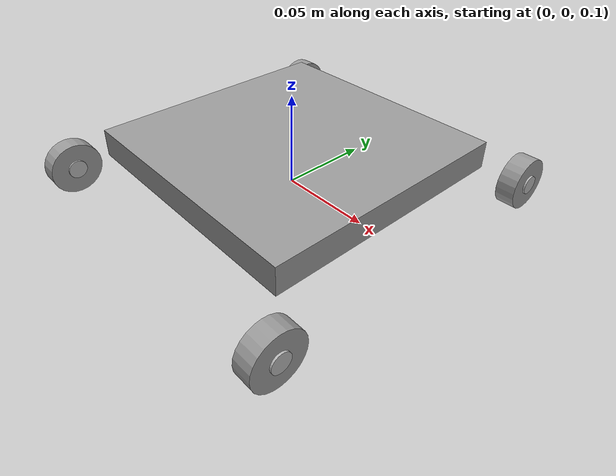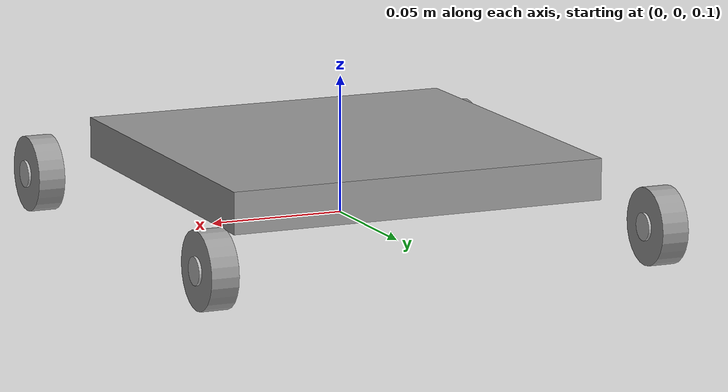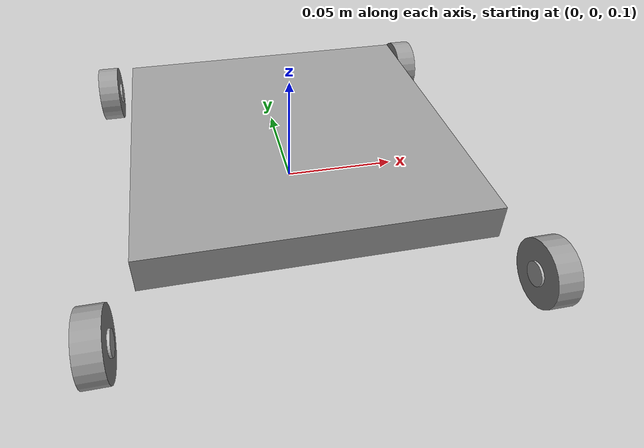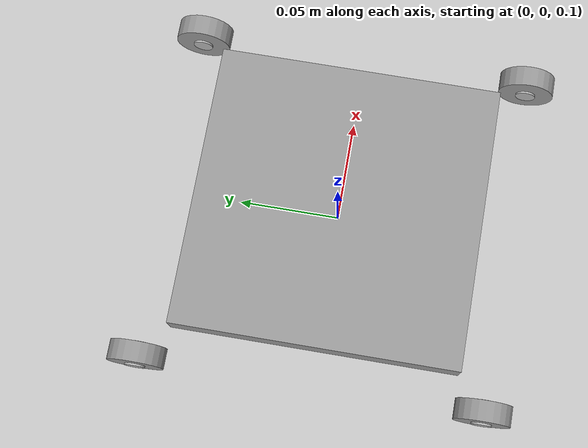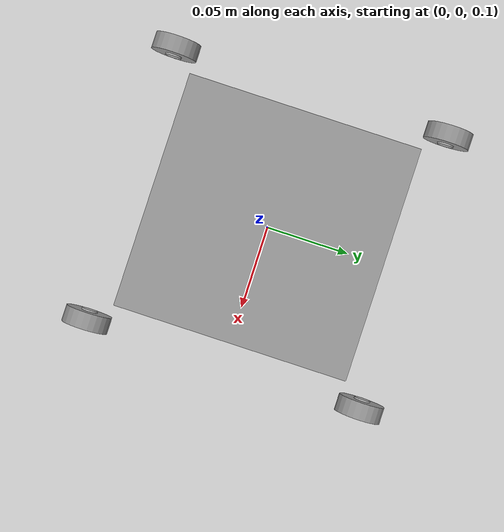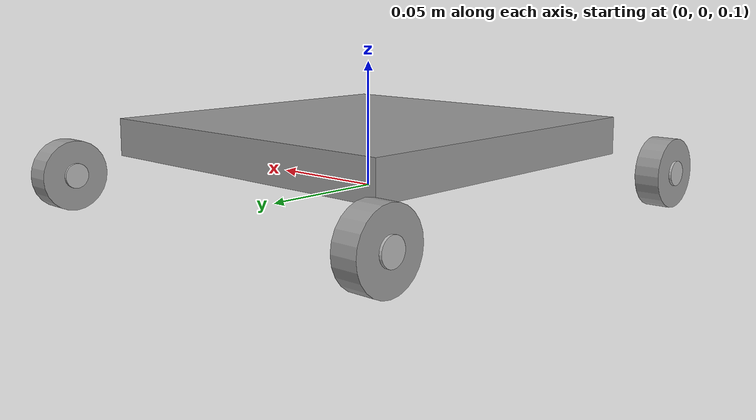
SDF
<?xml version="1.0" ?>
<!-- |    This document was autogenerated by xacro from /home/robostep/nav2-sample/src/OpenBase/openbase_gazebo_models/models/indep_steer/model.sdf.xacro | -->
<!-- |    EDITING THIS FILE BY HAND IS NOT RECOMMENDED                                 | -->
<sdf version="1.6">
  <model name="indep_steer_model">
    <pose>0 0 0.1 0 0 0</pose>
    <link name="body_link">
      <pose>0 0 0.02 0 0 0</pose>
      <inertial>
        <mass>0.07862944645</mass>
        <pose>0 0 0 0 0 0</pose>
        <inertia>
          <ixx>0.00018035985530754</ixx>
          <ixy>0</ixy>
          <ixz>0</ixz>
          <iyy>0.00018035985530754</iyy>
          <iyz>0</iyz>
          <izz>0.00018945961663220</izz>
        </inertia>
      </inertial>
      <visual name="visual">
        <pose>0 0 0 0 0 0</pose>
        <geometry>
          <box>
            <size>0.14 0.14 0.015</size>
          </box>
        </geometry>
        <material>
          <lighting>true</lighting>
          <script>
            <uri>file://media/materials/scripts/gazebo.material</uri>
            <name>Gazebo/Grey</name>
          </script>
          <ambient>1 1 1 1</ambient>
          <diffuse>0.7 0.7 0.7 1</diffuse>
          <specular>0.01 0.01 0.01 1</specular>
          <emissive>0 0 0 1</emissive>
          <shader type="vertex">
            <normal_map>__default__</normal_map>
          </shader>
        </material>
      </visual>
      <collision name="collision">
        <laser_retro>0</laser_retro>
        <max_contacts>10</max_contacts>
        <pose>0 0 0 0 0 0</pose>
        <geometry>
          <box>
            <size>0.14 0.14 0.015</size>
          </box>
        </geometry>
        <surface>
          <friction>
            <ode>
              <mu>1</mu>
              <mu2>1</mu2>
              <fdir1>0 0 0</fdir1>
              <slip1>0</slip1>
              <slip2>0</slip2>
            </ode>
            <torsional>
              <coefficient>1</coefficient>
              <patch_radius>0</patch_radius>
              <surface_radius>0</surface_radius>
              <use_patch_radius>true</use_patch_radius>
              <ode>
                <slip>0</slip>
              </ode>
            </torsional>
          </friction>
          <bounce>
            <restitution_coefficient>0</restitution_coefficient>
            <threshold>1e+06</threshold>
          </bounce>
          <contact>
            <collide_without_contact>false</collide_without_contact>
            <collide_bitmask>1</collide_bitmask>
            <ode>
              <soft_cfm>0</soft_cfm>
              <soft_erp>0.2</soft_erp>
              <kp>1e+13</kp>
              <kd>1</kd>
              <max_vel>0.01</max_vel>
              <min_depth>0</min_depth>
            </ode>
            <bullet>
              <split_impulse>true</split_impulse>
              <split_impulse_penetration_threshold>-0.01</split_impulse_penetration_threshold>
              <soft_cfm>0</soft_cfm>
              <soft_erp>0.2</soft_erp>
              <kp>1e+13</kp>
              <kd>1</kd>
            </bullet>
          </contact>
        </surface>
      </collision>
    </link>
    <include>
      <name>unicycle_wheel_front_left_model</name>
      <uri>model://unicycle_wheel</uri>
      <pose>0.08485281374238571 0.0848528137423857 0 0 0 0</pose>
    </include>
    <include>
      <name>unicycle_wheel_back_left_model</name>
      <uri>model://unicycle_wheel</uri>
      <pose>-0.0848528137423857 0.08485281374238571 0 0 0 0</pose>
    </include>
    <include>
      <name>unicycle_wheel_back_right_model</name>
      <uri>model://unicycle_wheel</uri>
      <pose>-0.08485281374238572 -0.0848528137423857 0 0 0 0</pose>
    </include>
    <include>
      <name>unicycle_wheel_front_right_model</name>
      <uri>model://unicycle_wheel</uri>
      <pose>0.08485281374238568 -0.08485281374238572 0 0 0 0</pose>
    </include>
    <joint name="front_left_linear_joint" type="prismatic">
      <parent>body_link</parent>
      <child>unicycle_wheel_front_left_model::unicycle_wheel_base_link</child>
      <axis>
        <limit>
          <lower>-0.004</lower>
          <upper>0.004</upper>
        </limit>
        <dynamics>
          <spring_reference>0.0</spring_reference>
          <spring_stiffness>300.0</spring_stiffness>
          <damping>0.2</damping>
        </dynamics>
        <xyz>0 0 1</xyz>
      </axis>
    </joint>
    <joint name="front_right_linear_joint" type="prismatic">
      <parent>body_link</parent>
      <child>unicycle_wheel_front_right_model::unicycle_wheel_base_link</child>
      <axis>
        <limit>
          <lower>-0.004</lower>
          <upper>0.004</upper>
        </limit>
        <dynamics>
          <spring_reference>0.0</spring_reference>
          <spring_stiffness>300.0</spring_stiffness>
          <damping>0.2</damping>
        </dynamics>
        <xyz>0 0 1</xyz>
      </axis>
    </joint>
    <joint name="back_left_linear_joint" type="prismatic">
      <parent>body_link</parent>
      <child>unicycle_wheel_back_left_model::unicycle_wheel_base_link</child>
      <axis>
        <limit>
          <lower>-0.004</lower>
          <upper>0.004</upper>
        </limit>
        <dynamics>
          <spring_reference>0.0</spring_reference>
          <spring_stiffness>300.0</spring_stiffness>
          <damping>0.2</damping>
        </dynamics>
        <xyz>0 0 1</xyz>
      </axis>
    </joint>
    <joint name="back_right_linear_joint" type="prismatic">
      <parent>body_link</parent>
      <child>unicycle_wheel_back_right_model::unicycle_wheel_base_link</child>
      <axis>
        <limit>
          <lower>-0.004</lower>
          <upper>0.004</upper>
        </limit>
        <dynamics>
          <spring_reference>0.0</spring_reference>
          <spring_stiffness>300.0</spring_stiffness>
          <damping>0.2</damping>
        </dynamics>
        <xyz>0 0 1</xyz>
      </axis>
    </joint>
    <plugin filename="libgazebo_ros_indep_steer_drive.so" name="indep_steer_drive">
      <unicycle_joints>
        <steer>unicycle_wheel_front_left_model::unicycle_steering_joint</steer>
        <axle>unicycle_wheel_front_left_model::unicycle_wheel_axle_joint</axle>
      </unicycle_joints>
      <unicycle_joints>
        <steer>unicycle_wheel_back_left_model::unicycle_steering_joint</steer>
        <axle>unicycle_wheel_back_left_model::unicycle_wheel_axle_joint</axle>
      </unicycle_joints>
      <unicycle_joints>
        <steer>unicycle_wheel_back_right_model::unicycle_steering_joint</steer>
        <axle>unicycle_wheel_back_right_model::unicycle_wheel_axle_joint</axle>
      </unicycle_joints>
      <unicycle_joints>
        <steer>unicycle_wheel_front_right_model::unicycle_steering_joint</steer>
        <axle>unicycle_wheel_front_right_model::unicycle_wheel_axle_joint</axle>
      </unicycle_joints>
      <wheel_radius>0.05</wheel_radius>
    </plugin>
  </model>
</sdf>

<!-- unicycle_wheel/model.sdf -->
<!-- |    This document was autogenerated by xacro from /home/robostep/nav2-sample/src/OpenBase/openbase_gazebo_models/models/unicycle_wheel/model.sdf.xacro | -->
<!-- |    EDITING THIS FILE BY HAND IS NOT RECOMMENDED                                 | -->
<sdf version="1.6">
  <model name="unicycle_wheel_model">
    <pose>0 0 0.01 0 0 0</pose>
    <link name="unicycle_wheel_rim_link">
      <pose>0 0 0.005 0 0 0</pose>
      <inertial>
        <mass>0.00835758</mass>
        <inertia>
          <ixx>9.40333e-07</ixx>
          <ixy>0</ixy>
          <ixz>0</ixz>
          <iyy>6.63684e-07</iyy>
          <iyz>0</iyz>
          <izz>6.63684e-07</izz>
        </inertia>
        <pose>0 -0.000343 0 0 0 0</pose>
      </inertial>
      <visual name="visual">
        <pose>0 0 0 0 1.5707963267948966 0</pose>
        <geometry>
          <cylinder>
            <radius>0.014</radius>
            <length>0.01</length>
          </cylinder>
        </geometry>
        <material>
          <lighting>true</lighting>
          <script>
            <uri>file://media/materials/scripts/gazebo.material</uri>
            <name>Gazebo/Grey</name>
          </script>
          <ambient>0.3 0.3 0.3 1</ambient>
          <diffuse>0.7 0.7 0.7 1</diffuse>
          <specular>0.01 0.01 0.01 1</specular>
          <emissive>0 0 0 1</emissive>
          <shader type="vertex">
            <normal_map>__default__</normal_map>
          </shader>
        </material>
      </visual>
      <collision name="collision">
        <laser_retro>0</laser_retro>
        <max_contacts>10</max_contacts>
        <pose>0 0 0 0 1.5707963267948966 0</pose>
        <geometry>
          <cylinder>
            <radius>0.014</radius>
            <length>0.01</length>
          </cylinder>
        </geometry>
        <surface>
          <friction>
            <ode>
              <mu>1</mu>
              <mu2>1</mu2>
              <fdir1>0 0 0</fdir1>
              <slip1>0</slip1>
              <slip2>0</slip2>
            </ode>
            <torsional>
              <coefficient>1</coefficient>
              <patch_radius>0</patch_radius>
              <surface_radius>0</surface_radius>
              <use_patch_radius>true</use_patch_radius>
              <ode>
                <slip>0</slip>
              </ode>
            </torsional>
          </friction>
          <bounce>
            <restitution_coefficient>0</restitution_coefficient>
            <threshold>1e+06</threshold>
          </bounce>
          <contact>
            <collide_without_contact>false</collide_without_contact>
            <collide_bitmask>1</collide_bitmask>
            <ode>
              <soft_cfm>0</soft_cfm>
              <soft_erp>0.2</soft_erp>
              <kp>1e+13</kp>
              <kd>1</kd>
              <max_vel>0.01</max_vel>
              <min_depth>0</min_depth>
            </ode>
            <bullet>
              <split_impulse>true</split_impulse>
              <split_impulse_penetration_threshold>-0.01</split_impulse_penetration_threshold>
              <soft_cfm>0</soft_cfm>
              <soft_erp>0.2</soft_erp>
              <kp>1e+13</kp>
              <kd>1</kd>
            </bullet>
          </contact>
        </surface>
      </collision>
    </link>
    <joint name="unicycle_wheel_axle_joint" type="revolute">
      <parent>unicycle_wheel_bearing_link</parent>
      <child>unicycle_wheel_rim_link</child>
      <pose>0 0 0 3.141592653589793 -1.5707963267948966 3.141592653589793</pose>
      <axis>
        <xyz>0 0 1</xyz>
        <limit>
          <lower>-1.79769e+308</lower>
          <upper>1.79769e+308</upper>
          <effort>-1</effort>
          <velocity>-1</velocity>
        </limit>
        <dynamics>
          <spring_reference>0</spring_reference>
          <spring_stiffness>0</spring_stiffness>
          <damping>0</damping>
          <friction>0.0001</friction>
        </dynamics>
      </axis>
      <physics>
        <ode>
          <limit>
            <cfm>0</cfm>
            <erp>0.2</erp>
          </limit>
          <suspension>
            <cfm>0</cfm>
            <erp>0.2</erp>
          </suspension>
        </ode>
      </physics>
    </joint>
    <link name="unicycle_wheel_bearing_link">
      <pose>0 0 0.005 0 0 0</pose>
      <visual name="visual">
        <pose>0 0 0 0 1.5707963267948966 0</pose>
        <geometry>
          <cylinder>
            <radius>0.005</radius>
            <length>0.012</length>
          </cylinder>
        </geometry>
      </visual>
      <inertial>
        <mass>0.001</mass>
        <inertia>
          <ixx>0.00001</ixx>
          <ixy>0</ixy>
          <ixz>0</ixz>
          <iyy>0.00001</iyy>
          <iyz>0</iyz>
          <izz>0.00001</izz>
        </inertia>
      </inertial>
    </link>
    <joint name="unicycle_steering_joint" type="revolute">
      <parent>unicycle_wheel_base_link</parent>
      <child>unicycle_wheel_bearing_link</child>
      <pose>0 0 -0.005 0 0 0</pose>
      <axis>
        <xyz>0 0 1</xyz>
        <use_parent_model_frame>0</use_parent_model_frame>
        <limit>
          <lower>-1.79769e+308</lower>
          <upper>1.79769e+308</upper>
          <effort>-1</effort>
          <velocity>-1</velocity>
        </limit>
        <dynamics>
          <spring_reference>0</spring_reference>
          <spring_stiffness>0</spring_stiffness>
          <damping>0</damping>
          <friction>0.0001</friction>
        </dynamics>
      </axis>
    </joint>
    <link name="unicycle_wheel_base_link">
      <kinematic>false</kinematic>
      <inertial>
        <mass>0.001</mass>
        <inertia>
          <ixx>0.00001</ixx>
          <ixy>0</ixy>
          <ixz>0</ixz>
          <iyy>0.00001</iyy>
          <iyz>0</iyz>
          <izz>0.00001</izz>
        </inertia>
      </inertial>
    </link>
  </model>
</sdf>
